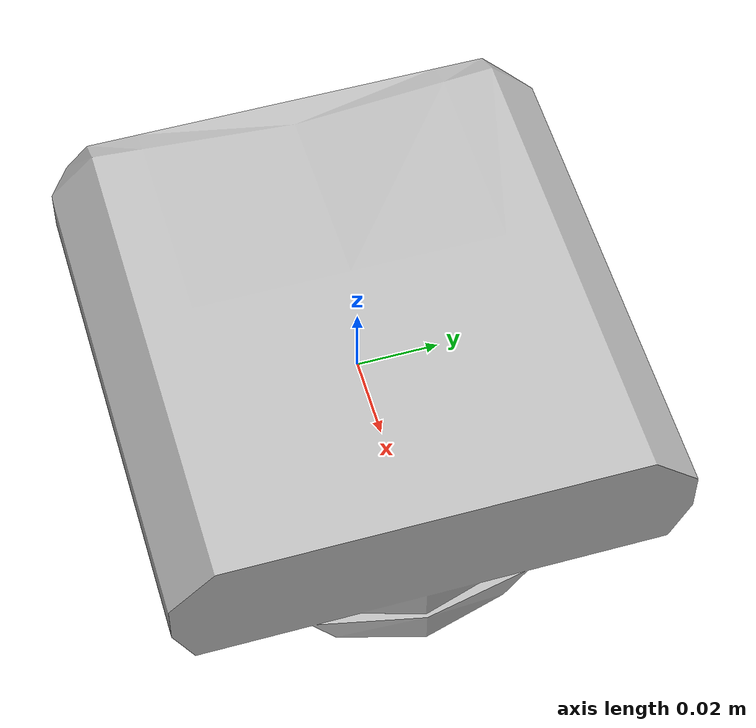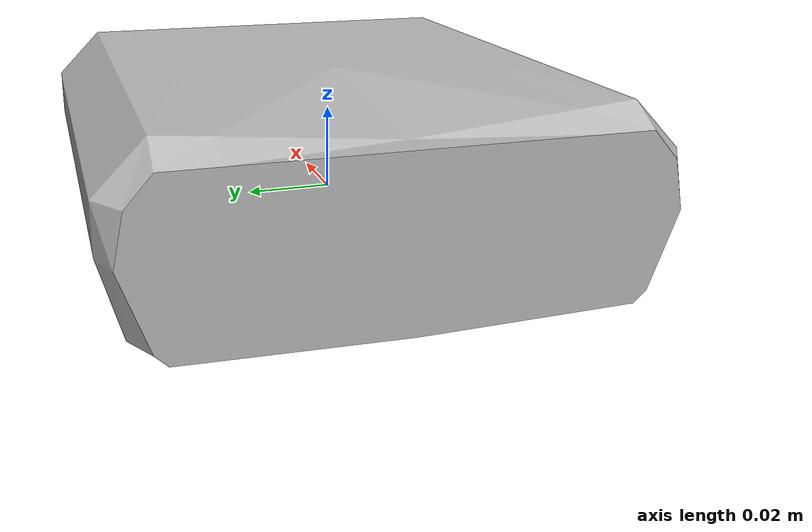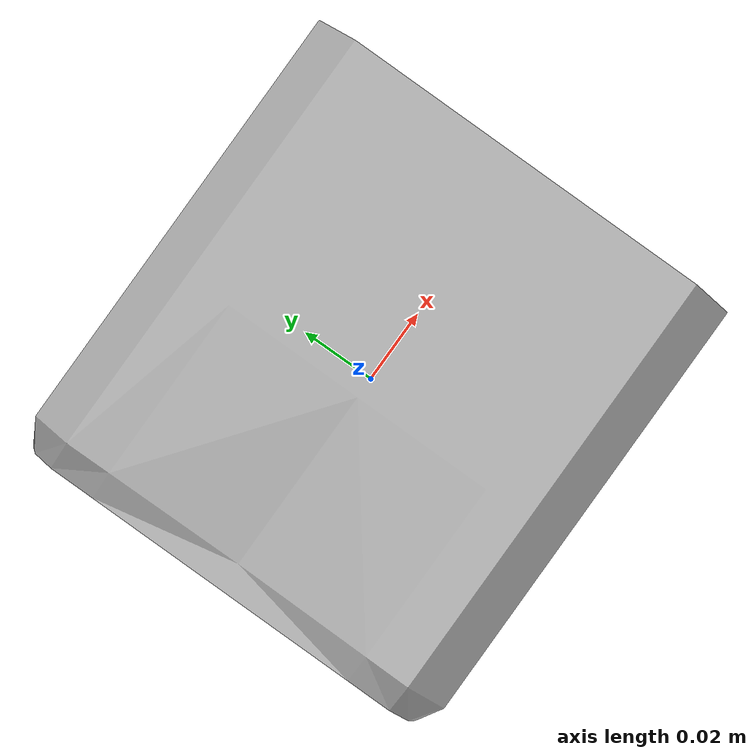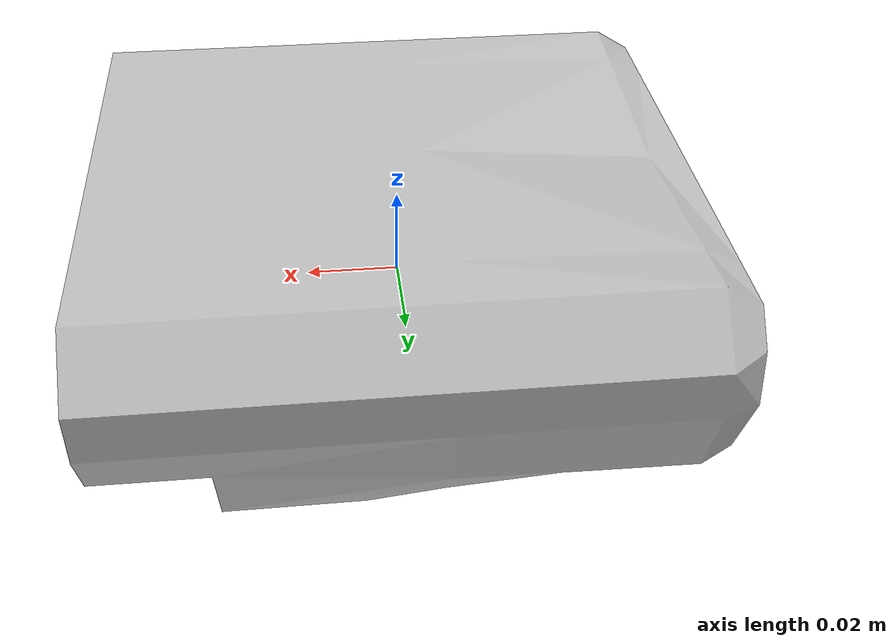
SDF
<?xml version="1.0" ?>
<sdf version="1.6">
  <model name="oculus_m1200d">
    <link name="forward_sonar_link">
      <inertial>
        <pose>0 0 0 3.14159265359 0 0</pose>
        <mass>4.35</mass>
        <inertia>
          <ixx>0.0360</ixx>          <!-- 1/12ml^2 -->
          <ixy>0</ixy>
          <ixz>0</ixz>
          <iyy>0</iyy>
          <iyz>0</iyz>
          <izz>0.0360</izz>
        </inertia>
      </inertial>
      <collision name="collision">
        <pose>0 0 0 3.14159265359 0 -1.57079632679</pose>
        <geometry>
          <mesh>
            <uri>model://oculus_m1200d_nps_multibeam/meshes/COLLISION-Oculus-M-series.dae</uri>
          </mesh>
        </geometry>
      </collision>
      <visual name="visual">
        <pose>0 0 0 3.14159265359 0 -1.57079632679</pose>
        <geometry>
          <mesh>
            <uri>model://oculus_m1200d_nps_multibeam/meshes/Oculus-M-series.dae</uri>
          </mesh>
        </geometry>
      </visual>

      <sensor name="image_sonar" type="depth">
        <visualize>true</visualize>
        <always_on>true</always_on>
        <update_rate>10</update_rate>
        <camera>
          <!-- 60 degrees for the oculus-m1200d at 2.1MHz mode -->
          <horizontal_fov>1.0471975512</horizontal_fov>
          <image>
            <width>256</width>
            <!-- Set vertical FOV by setting image height -->
            <!-- Approx 2 times the spec sheet (sepc: 12 deg.) -->
            <height>102</height>
            <format>R8G8B8</format>
          </image>
          <clip>
            <near>0.1</near>            <!-- optimal 2m-60m -->
            <far>5</far>
          </clip>
          <depth_camera>
            <output>depths</output>
          </depth_camera>
          <save enabled="false">
            <path>/tmp/camera</path>
          </save>
        </camera>
        <plugin filename="libnps_multibeam_sonar_ros_plugin.so" name="forward_sonar">
          <!-- Sonar properties -->
          <verticalFOV>12</verticalFOV>
          <sonarFreq>2100e3</sonarFreq>
          <bandwidth>265.5e3</bandwidth>
          <soundSpeed>1500</soundSpeed>
          <sourceLevel>150</sourceLevel>
          <maxDistance>1.2</maxDistance>
          <constantReflectivity>true</constantReflectivity>
          <!-- custom SDF Tag works when constantReflectivity is false -->
          <customSDFTagReflectivity>false</customSDFTagReflectivity>
          <!-- The CSV databsefile is located at the worlds folder -->
          <customSDFTagDatabaseFile>customSDFTagDatabase.csv</customSDFTagDatabaseFile>
          <!-- reflectivity database (by model name) works -->
          <!-- when both constantReflectivity and customSDFTagReflectivity are false -->
          <reflectivityDatabaseFile>variationalReflectivityDatabase.csv</reflectivityDatabaseFile>
          <raySkips>0</raySkips>
          <sensorGain>1</sensorGain>
          <plotScaler>0</plotScaler>
          <writeLog>false</writeLog>
          <debugFlag>true</debugFlag>
          <writeFrameInterval>5</writeFrameInterval>
          <artificialVehicleVibration>true</artificialVehicleVibration>
          <!-- This name is prepended to ROS topics -->
          <cameraName>oculus_m1200d</cameraName>
          <!-- ROS publication topics -->
          <imageTopicName>image_raw</imageTopicName>
          <cameraInfoTopicName>image_raw/camera_info</cameraInfoTopicName>
          <pointCloudTopicName>point_cloud</pointCloudTopicName>
          <depthImageTopicName>image_depth</depthImageTopicName>
          <depthImageCameraInfoTopicName>image_depth/camera_info</depthImageCameraInfoTopicName>
          <sonarImageRawTopicName>sonar_image_raw</sonarImageRawTopicName>
          <sonarImageTopicName>sonar_image</sonarImageTopicName>
          <frameName>forward_sonar_optical_link</frameName>
        </plugin>
      </sensor>
    </link>
  </model>
</sdf>
